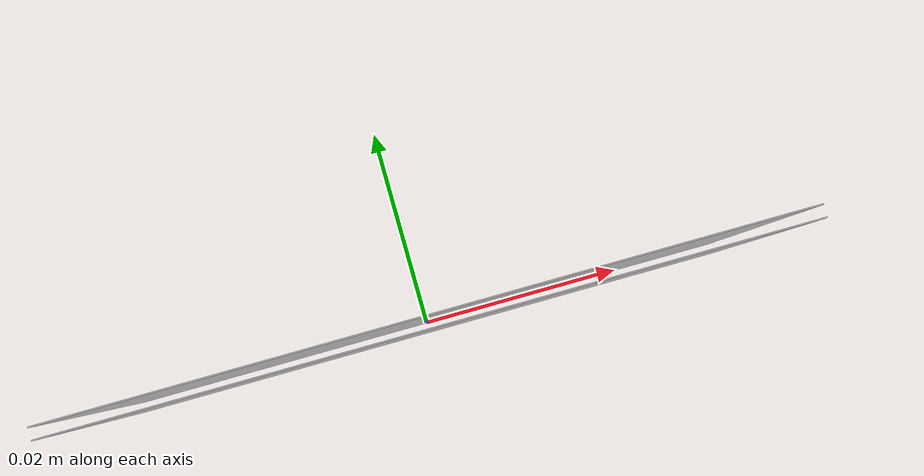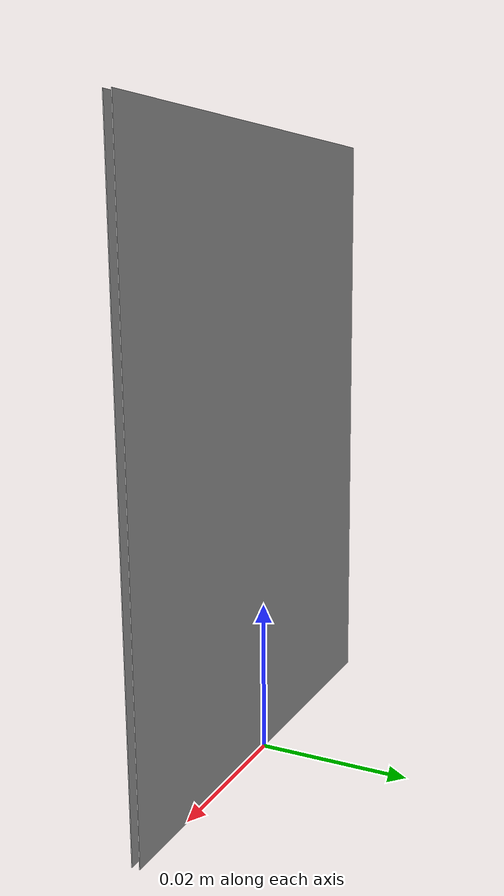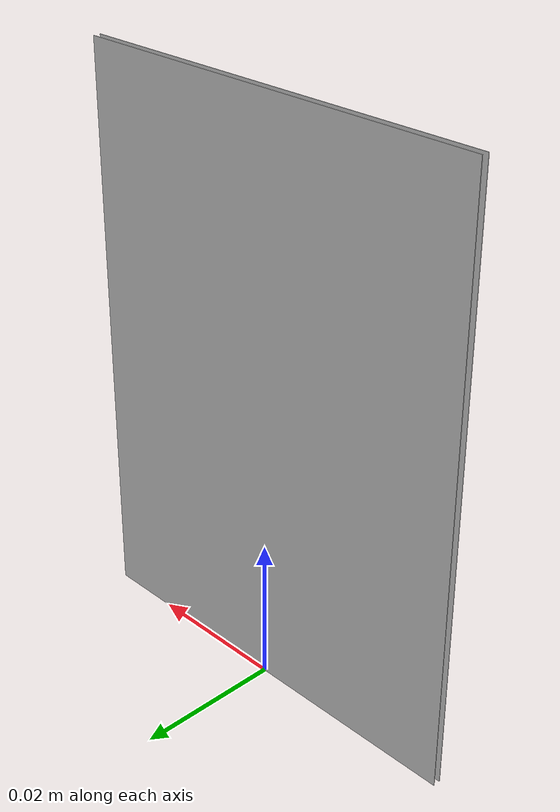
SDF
<?xml version="1.0"?>
<sdf version='1.4'>
  <model name="Sign Straight Left Turn">
  <link name='sign_front'>
    <pose>0 0 0.04 0 0 0</pose>
    <inertial>
      <inertia>
        <ixx>1e-6</ixx>
        <ixy>0</ixy>
        <ixz>0</ixz>
        <iyy>1e-6</iyy>
        <iyz>0</iyz>
        <izz>1e-6</izz>
      </inertia>
      <mass>1e-6</mass>
    </inertial>
    <collision name='collision'>
      <pose>0 0 -2e6 0 0 0</pose>
      <geometry>
        <box>
          <size>1e-6 1e-6 1e-6</size>
        </box>
      </geometry>
    </collision>
    <visual name='visual'>
      <geometry>
        <box>
          <size>0.06 1e-4 0.08</size>
        </box>
      </geometry>
      <material>
        <script>
          <uri>file://materials/scripts</uri>
          <uri>file://materials/textures</uri>
          <name>sign_straight_left_turn</name>
        </script>
      </material>
    </visual>
  </link>
  <link name='sign_back'>
    <pose>0 -1e-3 0.04 0 0 0</pose>
    <inertial>
      <inertia>
        <ixx>1e-6</ixx>
        <ixy>0</ixy>
        <ixz>0</ixz>
        <iyy>1e-6</iyy>
        <iyz>0</iyz>
        <izz>1e-6</izz>
      </inertia>
      <mass>1e-6</mass>
    </inertial>
    <collision name='collision'>
      <pose>0 0 -2e6 0 0 0</pose>
      <geometry>
        <box>
          <size>1e-6 1e-6 1e-6</size>
        </box>
      </geometry>
    </collision>
    <visual name='visual'>
      <geometry>
        <box>
          <size>0.06 1e-4 0.08</size>
        </box>
      </geometry>
    </visual>
  </link>
</model>
</sdf>
